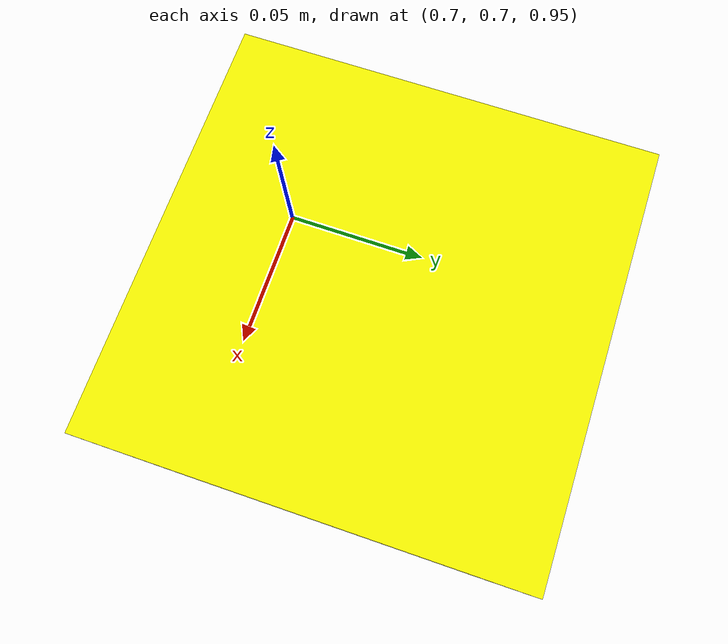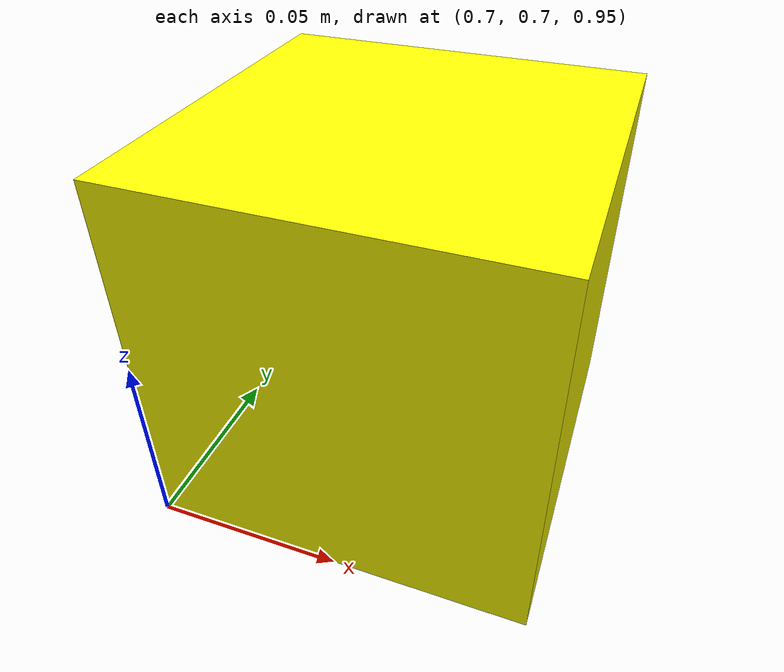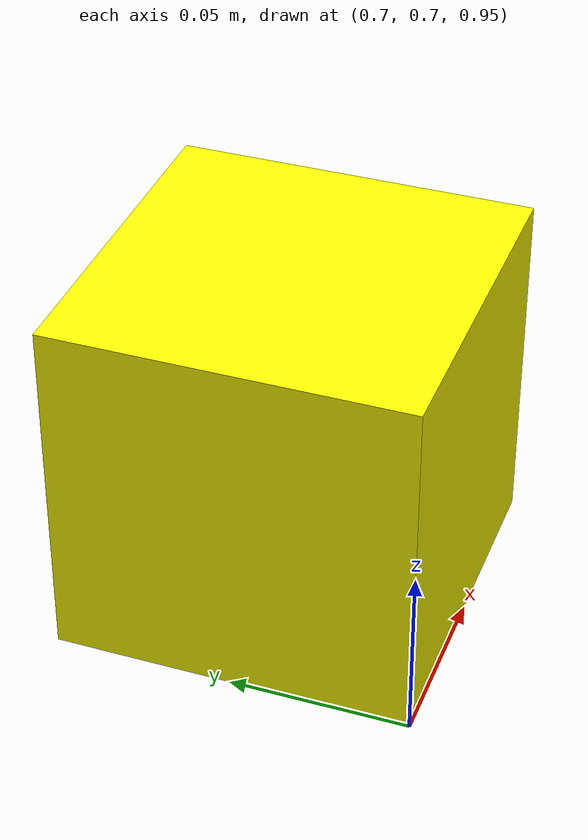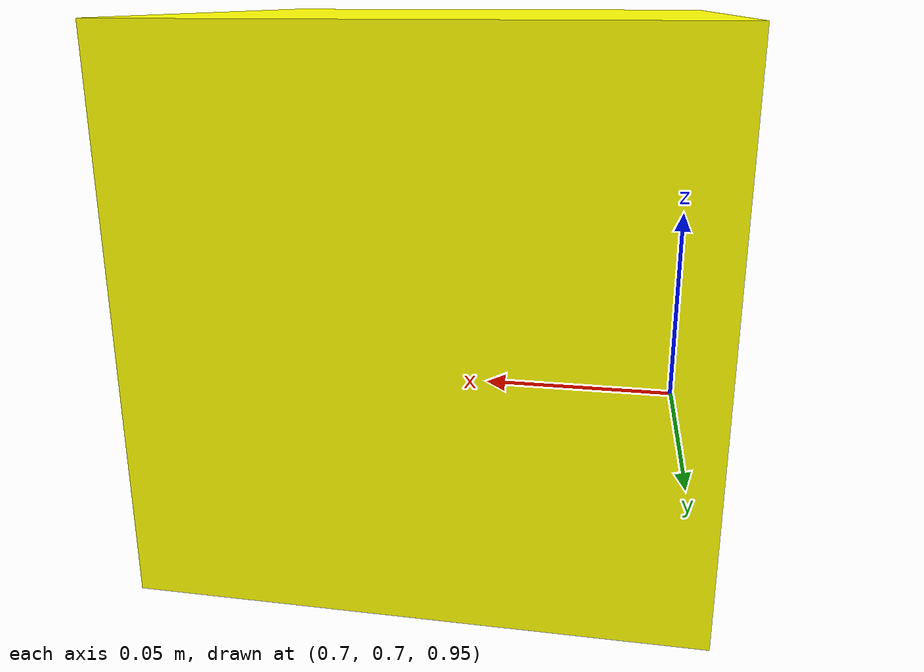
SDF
<?xml version="1.0"?>
<sdf version="1.9">
  <model name="arena_camera_pinhole">
    <static>true</static>
    <link name="link">
      <pose>0.75 0.75 1.0 0 1.5708 0</pose>

      <!-- Visual element to see the camera -->
      <visual name="camera_visual">
        <geometry>
          <box>
            <size>0.1 0.1 0.1</size>
          </box>
        </geometry>
        <material>
          <ambient>1 1 0 1</ambient> <!-- Yellow -->
          <diffuse>1 1 0 1</diffuse>
        </material>
      </visual>

      <sensor name="arena_camera" type="camera">
        <pose>0 0 0 0 0 0</pose>
        <gz_frame_id>arena_camera_optical</gz_frame_id>
        <frame_id>arena_camera_optical</frame_id> <!-- Future proofing for https://github.com/gazebosim/gz-sensors/pull/444 -->
        <camera name="arena_camera">
          <horizontal_fov>1.689</horizontal_fov>
          <lens>
            <intrinsics>
              <fx>355.923</fx>
              <fy>355.968</fy>
              <cx>399.419</cx>
              <cy>299.149</cy>
              <s>0.0</s>
            </intrinsics>
          </lens>
          <distortion>
            <k1>0.0</k1>
            <k2>0.0</k2>
            <p1>0.0</p1>
            <p2>0.0</p2>
            <k3>0.0</k3>
          </distortion>
          <image>
            <width>800</width>
            <height>600</height>
            <format>R8G8B8</format>
          </image>

          <clip>
            <near>0.01</near>
            <far>2</far>
          </clip>
          <noise>
             <type>gaussian</type>
             <mean>0</mean>
             <stddev>0.007</stddev>
           </noise>
        </camera>
        <always_on>true</always_on>
        <update_rate>30</update_rate>
        <visualize>false</visualize>
        <topic>arena_camera/image</topic>
        <plugin filename="gz-sim-sensors-system" name="gz::sim::systems::Sensors">
          <render_engine>ogre2</render_engine>
          <camera_info_topic>arena_camera/camera_info</camera_info_topic>
          <publish_info_on_image_update>true</publish_info_on_image_update>
          <camera_info_update_rate>30</camera_info_update_rate> <!-- Match image rate -->
        </plugin>
      </sensor>
    </link>
  </model>
</sdf>
